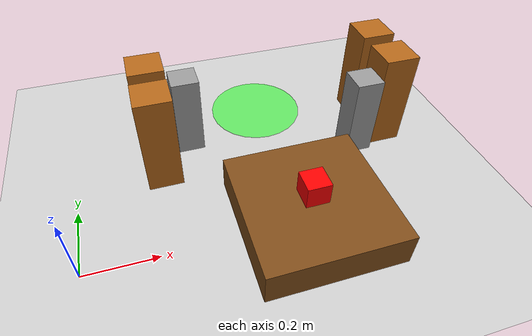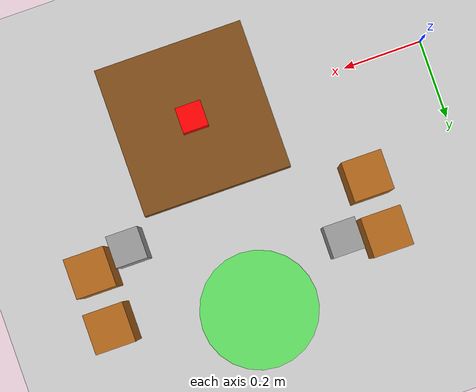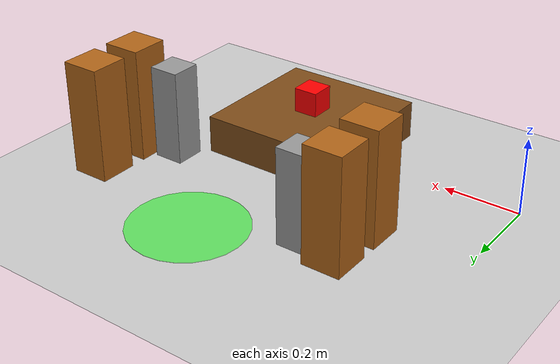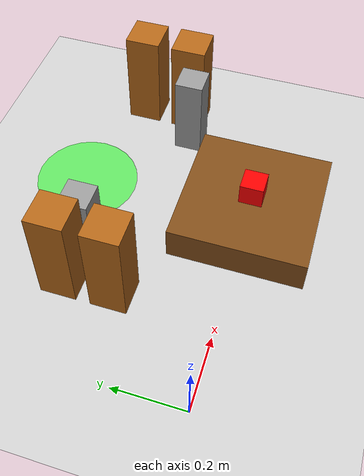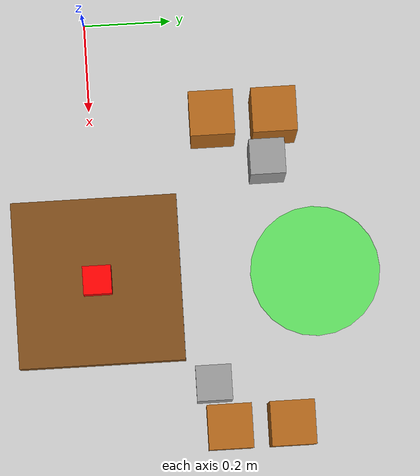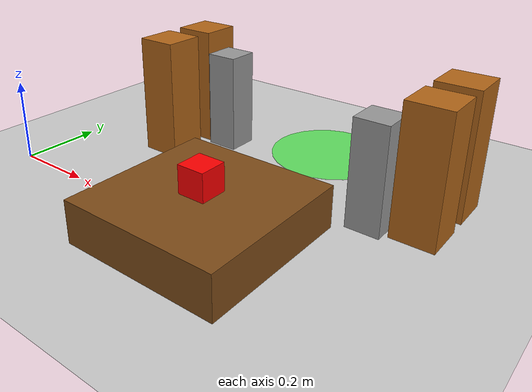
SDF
<?xml version="1.0"?>
<sdf version="1.7">
  <world name="pickplace_world">

    <physics name="bullet_physics" type="bullet_featherstone">
      <max_step_size>0.001</max_step_size>
      <real_time_factor>1</real_time_factor>
    </physics>

    <!-- Lighting -->
    <include>
      <uri>
        https://fuel.gazebosim.org/1.0/OpenRobotics/models/Sun
      </uri>
    </include>

    <!-- Ground plane -->
    <include>
      <uri>
        https://fuel.gazebosim.org/1.0/OpenRobotics/models/Ground Plane
      </uri>
    </include>

    <!-- Object Bin (solid platform — pickup object rests on top) -->
    <model name="object_bin">
      <static>true</static>
      <pose>0.6 0 0 0 0 0</pose>
      <link name="platform">
        <pose>0 0 0.05 0 0 0</pose>
        <visual name="visual">
          <geometry>
            <box><size>0.38 0.38 0.10</size></box>
          </geometry>
          <material>
            <ambient>0.5 0.3 0.1 1</ambient>
            <diffuse>0.5 0.3 0.1 1</diffuse>
          </material>
        </visual>
        <collision name="collision">
          <geometry>
            <box><size>0.38 0.38 0.10</size></box>
          </geometry>
        </collision>
      </link>
    </model>

    <!-- Target Zone (placement area) -->
    <model name="target_zone">
      <static>true</static>
      <pose>0.6 0.5 0.001 0 0 0</pose>
      <link name="marker">
        <visual name="visual">
          <geometry>
            <cylinder>
              <radius>0.15</radius>
              <length>0.002</length>
            </cylinder>
          </geometry>
          <material>
            <ambient>0 1 0 0.5</ambient>
            <diffuse>0 1 0 0.5</diffuse>
          </material>
        </visual>
      </link>
    </model>

    <!-- Pickable Object: 6.5x6.5x6.5 cm solid box on top of platform (platform top=0.10m, cube half=0.0325m) -->
    <model name="pickup_object">
      <pose>0.6 0 0.1325 0 0 0</pose>
      <link name="link">
        <inertial>
          <!-- 500g solid cube: side=0.065m
               Ixx=Iyy=Izz = m*(a²+b²)/12 = 0.5*(0.004225+0.004225)/12 ~= 0.000352 -->
          <mass>0.5</mass>
          <inertia>
            <ixx>0.000352</ixx>
            <iyy>0.000352</iyy>
            <izz>0.000352</izz>
          </inertia>
        </inertial>
        <velocity_decay>
          <linear>0.5</linear>
          <angular>1.0</angular>
        </velocity_decay>
        <visual name="visual">
          <geometry>
            <box>
              <size>0.065 0.065 0.065</size>
            </box>
          </geometry>
          <material>
            <ambient>1 0 0 1</ambient>
            <diffuse>1 0 0 1</diffuse>
          </material>
        </visual>
        <collision name="collision">
          <geometry>
            <box>
              <size>0.065 0.065 0.065</size>
            </box>
          </geometry>
          <surface>
            <friction>
              <ode>
                <mu>5.0</mu>
                <mu2>5.0</mu2>
                <slip1>0.0001</slip1>
                <slip2>0.0001</slip2>
              </ode>
              <torsional>
                <coefficient>0.1</coefficient>
                <use_patch_radius>false</use_patch_radius>
                <surface_radius>0.03</surface_radius>
              </torsional>
            </friction>
            <contact>
              <ode>
                <kp>100000</kp>
                <kd>500</kd>
                <max_vel>0.01</max_vel>
                <min_depth>0.001</min_depth>
              </ode>
            </contact>
          </surface>
        </collision>
      </link>
    </model>

    <!-- Static Camera (world-fixed, no jitter) -->
    <model name="static_camera_model">
      <static>true</static>
      <pose>0.6 0.0 0.8 0 1.5708 0</pose>
      <link name="camera_link">
        <sensor name="camera_head" type="rgbd_camera">
          <camera>
            <horizontal_fov>1.5184</horizontal_fov>
            <image>
              <width>424</width>
              <height>240</height>
            </image>
            <clip>
              <near>0.05</near>
              <far>5.0</far>
            </clip>
          </camera>
          <always_on>1</always_on>
          <gz_frame_id>camera_head_depth_optical_frame</gz_frame_id>
          <topic>camera_head</topic>
          <update_rate>5</update_rate>
          <visualize>true</visualize>
        </sensor>
      </link>
    </model>

    <!-- Offset clutter pillars (same as pickplace_world_obstacles.world) -->
    <model name="obstacle_pillar_1">
      <static>true</static>
      <pose>0.85 0.25 0.125 0 0 0</pose>
      <link name="link">
        <visual name="visual">
          <geometry>
            <box><size>0.08 0.08 0.25</size></box>
          </geometry>
          <material>
            <ambient>0.6 0.6 0.6 1</ambient>
            <diffuse>0.6 0.6 0.6 1</diffuse>
          </material>
        </visual>
        <collision name="collision">
          <geometry>
            <box><size>0.08 0.08 0.25</size></box>
          </geometry>
        </collision>
      </link>
    </model>

    <model name="obstacle_pillar_2">
      <static>true</static>
      <pose>0.35 0.4 0.125 0 0 0</pose>
      <link name="link">
        <visual name="visual">
          <geometry>
            <box><size>0.08 0.08 0.25</size></box>
          </geometry>
          <material>
            <ambient>0.6 0.6 0.6 1</ambient>
            <diffuse>0.6 0.6 0.6 1</diffuse>
          </material>
        </visual>
        <collision name="collision">
          <geometry>
            <box><size>0.08 0.08 0.25</size></box>
          </geometry>
        </collision>
      </link>
    </model>

    <!-- Gate 1 (y=0.28): posts at x=0.25 and x=0.95, 0.60m clear opening
         centered on x=0.6 -->
    <model name="gate1_post_left">
      <static>true</static>
      <pose>0.25 0.28 0.15 0 0 0</pose>
      <link name="link">
        <visual name="visual">
          <geometry><box><size>0.10 0.10 0.30</size></box></geometry>
          <material><ambient>0.7 0.4 0.1 1</ambient><diffuse>0.7 0.4 0.1 1</diffuse></material>
        </visual>
        <collision name="collision">
          <geometry><box><size>0.10 0.10 0.30</size></box></geometry>
        </collision>
      </link>
    </model>
    <model name="gate1_post_right">
      <static>true</static>
      <pose>0.95 0.28 0.15 0 0 0</pose>
      <link name="link">
        <visual name="visual">
          <geometry><box><size>0.10 0.10 0.30</size></box></geometry>
          <material><ambient>0.7 0.4 0.1 1</ambient><diffuse>0.7 0.4 0.1 1</diffuse></material>
        </visual>
        <collision name="collision">
          <geometry><box><size>0.10 0.10 0.30</size></box></geometry>
        </collision>
      </link>
    </model>

    <!-- Gate 2 (y=0.42): same 0.60m clear opening, second gate closer to
         the target zone -->
    <model name="gate2_post_left">
      <static>true</static>
      <pose>0.25 0.42 0.15 0 0 0</pose>
      <link name="link">
        <visual name="visual">
          <geometry><box><size>0.10 0.10 0.30</size></box></geometry>
          <material><ambient>0.7 0.4 0.1 1</ambient><diffuse>0.7 0.4 0.1 1</diffuse></material>
        </visual>
        <collision name="collision">
          <geometry><box><size>0.10 0.10 0.30</size></box></geometry>
        </collision>
      </link>
    </model>
    <model name="gate2_post_right">
      <static>true</static>
      <pose>0.95 0.42 0.15 0 0 0</pose>
      <link name="link">
        <visual name="visual">
          <geometry><box><size>0.10 0.10 0.30</size></box></geometry>
          <material><ambient>0.7 0.4 0.1 1</ambient><diffuse>0.7 0.4 0.1 1</diffuse></material>
        </visual>
        <collision name="collision">
          <geometry><box><size>0.10 0.10 0.30</size></box></geometry>
        </collision>
      </link>
    </model>

  </world>
</sdf>
